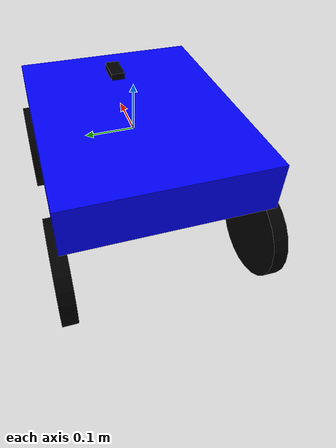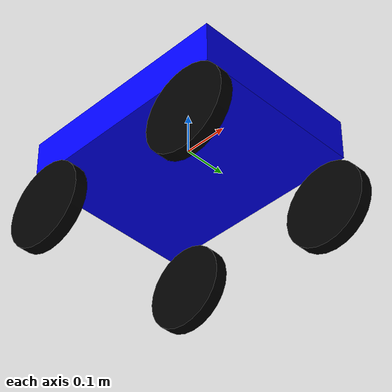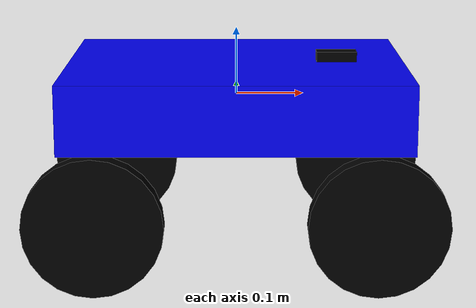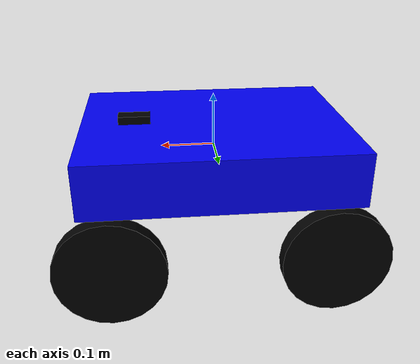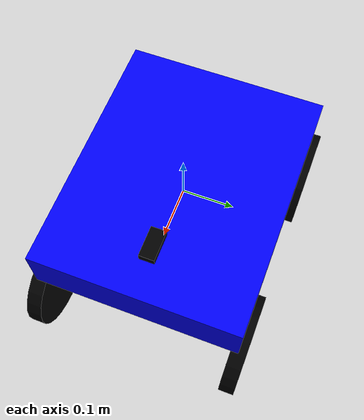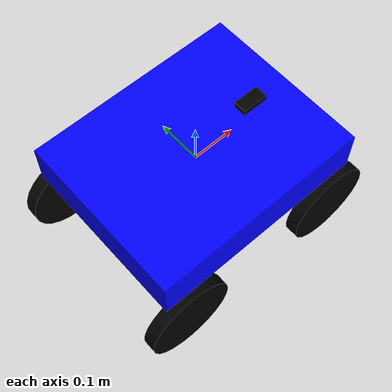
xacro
<?xml version="1.0"?>
<robot xmlns:xacro="http://ros.org/wiki/xacro" name="my_robot">

  <!-- ARGUMENT NHẬN TỪ FILE LAUNCH                              -->
  <xacro:arg name="controllers_file" default=""/>

  <!-- THAM SỐ CHUNG                                             -->
  <xacro:property name="base_length" value="0.5"/>
  <xacro:property name="base_width" value="0.4"/>
  <xacro:property name="base_height" value="0.1"/>
  <xacro:property name="wheel_radius" value="0.1"/>
  <xacro:property name="wheel_width" value="0.03"/>
  <xacro:property name="wheel_mass" value="0.5"/>
  <xacro:property name="camera_offset_x" value="0.15"/>
  <xacro:property name="imu_offset_z" value="0.02"/>
  <xacro:property name="wheel_x_offset" value="0.2"/>
  <xacro:property name="wheel_separation" value="0.4"/>

  <!-- BASE                                                      -->
  <link name="base_link">
    <visual>
      <geometry>
        <box size="${base_length} ${base_width} ${base_height}"/>
      </geometry>
      <material name="blue">
        <color rgba="0 0 1 1"/>
      </material>
    </visual>
    <collision>
      <geometry>
        <box size="${base_length} ${base_width} ${base_height}"/>
      </geometry>
    </collision>
    <inertial>
      <mass value="5.0"/>
      <inertia ixx="0.1" ixy="0.0" ixz="0.0" iyy="0.1" iyz="0.0" izz="0.1"/>
    </inertial>
  </link>

  <link name="base_footprint"/>

  <joint name="base_joint" type="fixed">
    <parent link="base_footprint"/>
    <child link="base_link"/>
    <origin xyz="0 0 0" rpy="0 0 0"/>
  </joint>

  <!-- BÁNH TRƯỚC TRÁI                                           -->
  <link name="left_front_wheel">
    <visual>
      <origin rpy="1.5708 0 0" xyz="0 0 0"/>
      <geometry>
        <cylinder radius="${wheel_radius}" length="${wheel_width}"/>
      </geometry>
      <material name="black">
        <color rgba="0 0 0 1"/>
      </material>
    </visual>
    <collision>
      <origin rpy="1.5708 0 0" xyz="0 0 0"/>
      <geometry>
        <cylinder radius="${wheel_radius}" length="${wheel_width}"/>
      </geometry>
    </collision>
    <inertial>
      <mass value="${wheel_mass}"/>
      <inertia ixx="0.01" ixy="0.0" ixz="0.0" iyy="0.01" iyz="0.0" izz="0.01"/>
    </inertial>
  </link>

  <joint name="left_front_wheel_joint" type="continuous">
    <parent link="base_link"/>
    <child link="left_front_wheel"/>
    <origin xyz="${wheel_x_offset} ${wheel_separation/2.0} ${-(base_height/2.0 + wheel_radius)}" rpy="0 0 0"/>
    <axis xyz="0 1 0"/>
  </joint>

  <!-- BÁNH TRƯỚC PHẢI                                           -->
  <link name="right_front_wheel">
    <visual>
      <origin rpy="1.5708 0 0" xyz="0 0 0"/>
      <geometry>
        <cylinder radius="${wheel_radius}" length="${wheel_width}"/>
      </geometry>
      <material name="black">
        <color rgba="0 0 0 1"/>
      </material>
    </visual>
    <collision>
      <origin rpy="1.5708 0 0" xyz="0 0 0"/>
      <geometry>
        <cylinder radius="${wheel_radius}" length="${wheel_width}"/>
      </geometry>
    </collision>
    <inertial>
      <mass value="${wheel_mass}"/>
      <inertia ixx="0.01" ixy="0.0" ixz="0.0" iyy="0.01" iyz="0.0" izz="0.01"/>
    </inertial>
  </link>

  <joint name="right_front_wheel_joint" type="continuous">
    <parent link="base_link"/>
    <child link="right_front_wheel"/>
    <origin xyz="${wheel_x_offset} ${-wheel_separation/2.0} ${-(base_height/2.0 + wheel_radius)}" rpy="0 0 0"/>
    <axis xyz="0 1 0"/>
  </joint>

  <!-- BÁNH SAU TRÁI                                             -->
  <link name="left_rear_wheel">
    <visual>
      <origin rpy="1.5708 0 0" xyz="0 0 0"/>
      <geometry>
        <cylinder radius="${wheel_radius}" length="${wheel_width}"/>
      </geometry>
      <material name="black">
        <color rgba="0 0 0 1"/>
      </material>
    </visual>
    <collision>
      <origin rpy="1.5708 0 0" xyz="0 0 0"/>
      <geometry>
        <cylinder radius="${wheel_radius}" length="${wheel_width}"/>
      </geometry>
    </collision>
    <inertial>
      <mass value="${wheel_mass}"/>
      <inertia ixx="0.01" ixy="0.0" ixz="0.0" iyy="0.01" iyz="0.0" izz="0.01"/>
    </inertial>
  </link>

  <joint name="left_rear_wheel_joint" type="continuous">
    <parent link="base_link"/>
    <child link="left_rear_wheel"/>
    <origin xyz="${-wheel_x_offset} ${wheel_separation/2.0} ${-(base_height/2.0 + wheel_radius)}" rpy="0 0 0"/>
    <axis xyz="0 1 0"/>
  </joint>

  <!-- BÁNH SAU PHẢI                                             -->
  <link name="right_rear_wheel">
    <visual>
      <origin rpy="1.5708 0 0" xyz="0 0 0"/>
      <geometry>
        <cylinder radius="${wheel_radius}" length="${wheel_width}"/>
      </geometry>
      <material name="black">
        <color rgba="0 0 0 1"/>
      </material>
    </visual>
    <collision>
      <origin rpy="1.5708 0 0" xyz="0 0 0"/>
      <geometry>
        <cylinder radius="${wheel_radius}" length="${wheel_width}"/>
      </geometry>
    </collision>
    <inertial>
      <mass value="${wheel_mass}"/>
      <inertia ixx="0.01" ixy="0.0" ixz="0.0" iyy="0.01" iyz="0.0" izz="0.01"/>
    </inertial>
  </link>

  <joint name="right_rear_wheel_joint" type="continuous">
    <parent link="base_link"/>
    <child link="right_rear_wheel"/>
    <origin xyz="${-wheel_x_offset} ${-wheel_separation/2.0} ${-(base_height/2.0 + wheel_radius)}" rpy="0 0 0"/>
    <axis xyz="0 1 0"/>
  </joint>

  <!-- GAZEBO CONTACT / FRICTION                                 -->
  <gazebo reference="left_front_wheel">
    <mu1>1.0</mu1>
    <mu2>0.8</mu2>
    <kp>1e8</kp>
    <kd>1</kd>
    <min_depth>0.001</min_depth>
  </gazebo>

  <gazebo reference="right_front_wheel">
    <mu1>1.0</mu1>
    <mu2>0.8</mu2>
    <kp>1e8</kp>
    <kd>1</kd>
    <min_depth>0.001</min_depth>
  </gazebo>

  <gazebo reference="left_rear_wheel">
    <mu1>1.0</mu1>
    <mu2>0.8</mu2>
    <kp>1e8</kp>
    <kd>1</kd>
    <min_depth>0.001</min_depth>
  </gazebo>

  <gazebo reference="right_rear_wheel">
    <mu1>1.0</mu1>
    <mu2>0.8</mu2>
    <kp>1e8</kp>
    <kd>1</kd>
    <min_depth>0.001</min_depth>
  </gazebo>

  <!-- ROS2_CONTROL                                              -->
  <ros2_control name="GazeboSimSystem" type="system">
    <hardware>
      <plugin>gz_ros2_control/GazeboSimSystem</plugin>
    </hardware>

    <joint name="left_front_wheel_joint">
      <command_interface name="velocity"/>
      <state_interface name="position"/>
      <state_interface name="velocity"/>
    </joint>

    <joint name="left_rear_wheel_joint">
      <command_interface name="velocity"/>
      <state_interface name="position"/>
      <state_interface name="velocity"/>
    </joint>

    <joint name="right_front_wheel_joint">
      <command_interface name="velocity"/>
      <state_interface name="position"/>
      <state_interface name="velocity"/>
    </joint>

    <joint name="right_rear_wheel_joint">
      <command_interface name="velocity"/>
      <state_interface name="position"/>
      <state_interface name="velocity"/>
    </joint>
  </ros2_control>

  <!-- PLUGIN GZ_ROS2_CONTROL                                    -->
  <!-- QUAN TRỌNG: dùng ${controllers_file}                      -->
  <gazebo>
    <plugin filename="libgz_ros2_control-system.so" name="gz_ros2_control::GazeboSimROS2ControlPlugin">
      <parameters>$(arg controllers_file)</parameters>
    </plugin>
  </gazebo>

  <!-- CAMERA                                                    -->
  <link name="camera_link">
    <visual>
      <geometry>
        <box size="0.06 0.03 0.03"/>
      </geometry>
      <material name="black"/>
    </visual>
    <collision>
      <geometry>
        <box size="0.06 0.03 0.03"/>
      </geometry>
    </collision>
    <inertial>
      <mass value="0.1"/>
      <inertia ixx="0.001" ixy="0.0" ixz="0.0" iyy="0.001" iyz="0.0" izz="0.001"/>
    </inertial>
  </link>

  <joint name="camera_joint" type="fixed">
    <parent link="base_link"/>
    <child link="camera_link"/>
    <origin xyz="${camera_offset_x} 0 ${base_height/2}" rpy="0 0 0"/>
  </joint>

  <gazebo reference="camera_link">
    <sensor name="rgb_camera" type="camera">
      <always_on>true</always_on>
      <update_rate>30</update_rate>
      <topic>camera/rgb/image_raw</topic>
      <camera name="rgb">
        <horizontal_fov>1.047</horizontal_fov>
        <image>
          <width>640</width>
          <height>480</height>
          <format>R8G8B8</format>
        </image>
        <clip>
          <near>0.03</near>
          <far>100</far>
        </clip>
      </camera>
    </sensor>

    <sensor name="depth_camera" type="depth_camera">
      <always_on>true</always_on>
      <update_rate>30</update_rate>
      <topic>camera/depth/image_raw</topic>
      <camera name="depth">
        <horizontal_fov>1.047</horizontal_fov>
        <image>
          <width>640</width>
          <height>480</height>
        </image>
        <clip>
          <near>0.03</near>
          <far>10.0</far>
        </clip>
      </camera>
    </sensor>
  </gazebo>

  <!-- IMU                                                       -->
  <link name="imu_link">
    <inertial>
      <mass value="0.01"/>
      <inertia ixx="0.0001" ixy="0.0" ixz="0.0" iyy="0.0001" iyz="0.0" izz="0.0001"/>
    </inertial>
  </link>

  <joint name="imu_joint" type="fixed">
    <parent link="base_link"/>
    <child link="imu_link"/>
    <origin xyz="0 0 ${base_height + imu_offset_z}" rpy="0 0 0"/>
  </joint>

  <gazebo reference="imu_link">
    <sensor name="imu_sensor" type="imu">
      <always_on>true</always_on>
      <update_rate>100</update_rate>
      <topic>imu</topic>
      <imu/>
    </sensor>
  </gazebo>

</robot>
